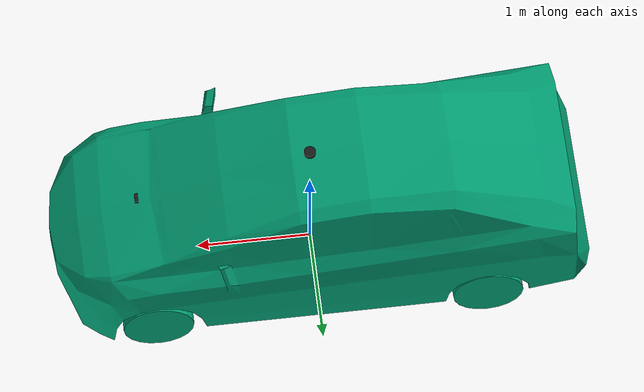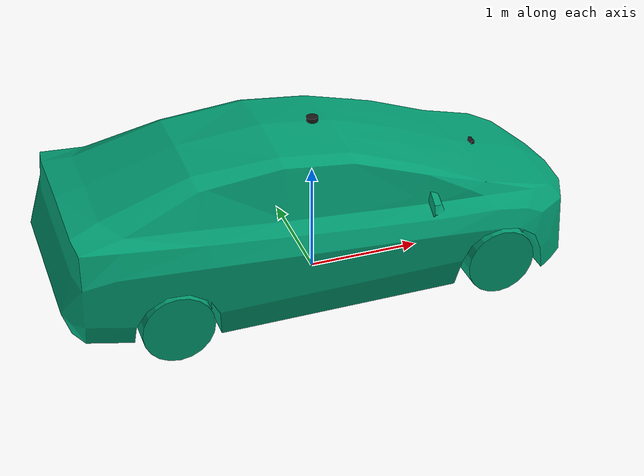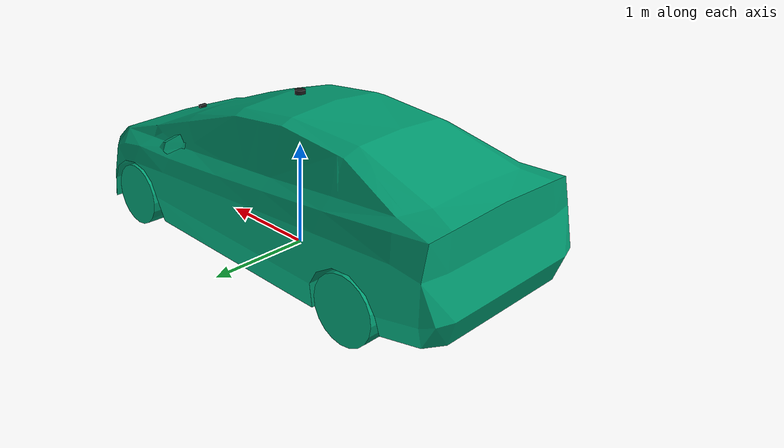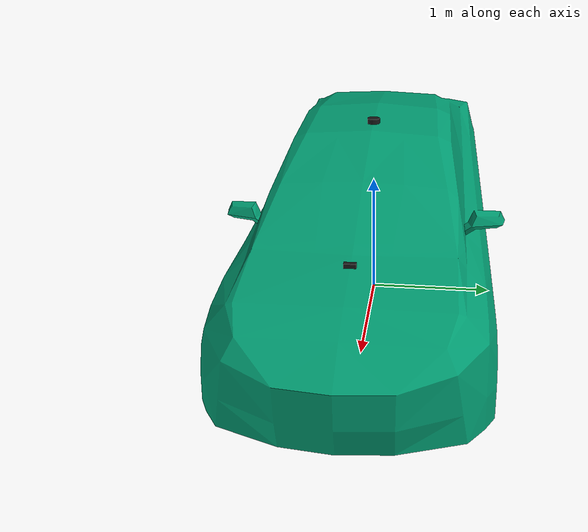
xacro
<?xml version="1.0"?>
<robot name="prius" xmlns:xacro="http://www.ros.org/wiki/xacro">

  <xacro:include filename="$(find gcamp_gazebo)/description/prius_core.xacro"/>
  <xacro:include filename="$(find gcamp_gazebo)/description/prius_gazebo.xacro"/>
  <xacro:include filename="$(find gcamp_gazebo)/description/prius_sensors.xacro"/>

  <!-- VLP-16 mounted on roof (z=1.5 from base_link ≈ roof of Prius) -->
  <joint name="velodyne_joint" type="fixed">
    <origin rpy="0 0 0" xyz="0 0 1.5"/>
    <parent link="base_link"/>
    <child  link="velodyne"/>
  </joint>

  <link name="velodyne">
    <inertial>
      <mass value="0.01"/>
      <origin xyz="0 0 0"/>
      <inertia ixx="1e-7" ixy="0" ixz="0" iyy="1e-7" iyz="0" izz="1e-7"/>
    </inertial>
    <visual>
      <geometry><cylinder radius="0.05" length="0.04"/></geometry>
      <material name="black"><color rgba="0.1 0.1 0.1 1"/></material>
    </visual>
  </link>

  <gazebo reference="velodyne">
    <sensor name="velodyne-VLP16" type="ray">
      <pose>0 0 0 0 0 0</pose>
      <visualize>false</visualize>
      <update_rate>10</update_rate>
      <ray>
        <scan>
          <horizontal>
            <samples>1875</samples>
            <resolution>1</resolution>
            <min_angle>-3.1415926535897931</min_angle>
            <max_angle>3.1415926535897931</max_angle>
          </horizontal>
          <vertical>
            <samples>16</samples>
            <resolution>1</resolution>
            <min_angle>-0.2617993877991494</min_angle>
            <max_angle>0.2617993877991494</max_angle>
          </vertical>
        </scan>
        <range>
          <min>0.055</min>
          <max>140.0</max>
          <resolution>0.001</resolution>
        </range>
        <noise>
          <type>gaussian</type>
          <mean>0.0</mean>
          <stddev>0.0</stddev>
        </noise>
      </ray>
      <plugin filename="libgazebo_ros_ray_sensor.so" name="gazebo_ros_laser_controller">
        <ros>
          <remapping>~/out:=points_raw</remapping>
        </ros>
        <output_type>sensor_msgs/PointCloud2</output_type>
        <frame_name>velodyne</frame_name>
      </plugin>
    </sensor>
  </gazebo>

</robot>

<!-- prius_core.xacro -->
<robot xmlns:xacro="http://www.ros.org/wiki/xacro">

  <xacro:property name="wheel_radius" value="0.31265"/>
  <xacro:property name="wheel_width"  value="0.20"/>
  <xacro:property name="front_axle_x" value="1.41"/>
  <xacro:property name="rear_axle_x"  value="-1.45"/>
  <xacro:property name="front_track_y" value="0.76"/>
  <xacro:property name="rear_track_y"  value="0.786"/>
  <xacro:property name="axle_z"       value="${wheel_radius}"/>
  <xacro:property name="max_steer"    value="0.5"/>

  <link name="base_link"/>

  <joint name="base_footprint_joint" type="fixed">
    <parent link="base_link"/>
    <child  link="base_footprint"/>
    <origin xyz="0 0 0" rpy="0 0 0"/>
  </joint>

  <link name="base_footprint"/>

  <joint name="chassis_joint" type="fixed">
    <parent link="base_link"/>
    <child  link="chassis"/>
    <origin xyz="0 0 0" rpy="0 0 0"/>
  </joint>

  <link name="chassis">
    <!-- Original Prius SDF mesh has no visual pose; rotate only to map SDF Y-forward to ROS X-forward. -->
    <visual>
      <origin xyz="0 0 0" rpy="0 0 1.5708"/>
      <geometry>
        <mesh filename="file://$(find gcamp_gazebo)/meshes/Hybrid.obj" scale="0.01 0.01 0.01"/>
      </geometry>
    </visual>
    <collision>
      <origin xyz="0 0 0.65" rpy="0 0 0"/>
      <geometry><box size="4.5 1.8 1.3"/></geometry>
    </collision>
    <inertial>
      <mass value="1326.0"/>
      <origin xyz="0 0 0.5" rpy="0 0 0"/>
      <inertia ixx="2581.13" ixy="0" ixz="0" iyy="591.31" iyz="0" izz="2681.95"/>
    </inertial>
  </link>

  <!-- ── Front left: steering parent + spinning wheel ── -->
  <joint name="front_left_steering_joint" type="revolute">
    <parent link="base_link"/>
    <child  link="front_left_steer_link"/>
    <origin xyz="${front_axle_x} ${front_track_y} ${axle_z}" rpy="0 0 0"/>
    <axis xyz="0 0 1"/>
    <limit lower="-${max_steer}" upper="${max_steer}" effort="100" velocity="1.0"/>
  </joint>

  <link name="front_left_steer_link">
    <visual>
      <geometry><sphere radius="0.001"/></geometry>
    </visual>
    <inertial>
      <mass value="0.1"/>
      <inertia ixx="1e-5" ixy="0" ixz="0" iyy="1e-5" iyz="0" izz="1e-5"/>
    </inertial>
  </link>

  <joint name="front_left_wheel_joint" type="continuous">
    <parent link="front_left_steer_link"/>
    <child  link="front_left_wheel"/>
    <origin xyz="0 0 0" rpy="0 0 0"/>
    <axis xyz="0 1 0"/>
  </joint>

  <link name="front_left_wheel">
    <visual>
      <geometry><sphere radius="0.001"/></geometry>
    </visual>
    <collision>
      <origin xyz="0 0 0" rpy="${pi/2} 0 0"/>
      <geometry><cylinder radius="${wheel_radius}" length="${wheel_width}"/></geometry>
    </collision>
    <inertial>
      <mass value="11.0"/>
      <inertia ixx="0.311" ixy="0" ixz="0" iyy="0.538" iyz="0" izz="0.311"/>
    </inertial>
  </link>

  <!-- ── Front right: steering parent + spinning wheel ── -->
  <joint name="front_right_steering_joint" type="revolute">
    <parent link="base_link"/>
    <child  link="front_right_steer_link"/>
    <origin xyz="${front_axle_x} -${front_track_y} ${axle_z}" rpy="0 0 0"/>
    <axis xyz="0 0 1"/>
    <limit lower="-${max_steer}" upper="${max_steer}" effort="100" velocity="1.0"/>
  </joint>

  <link name="front_right_steer_link">
    <visual>
      <geometry><sphere radius="0.001"/></geometry>
    </visual>
    <inertial>
      <mass value="0.1"/>
      <inertia ixx="1e-5" ixy="0" ixz="0" iyy="1e-5" iyz="0" izz="1e-5"/>
    </inertial>
  </link>

  <joint name="front_right_wheel_joint" type="continuous">
    <parent link="front_right_steer_link"/>
    <child  link="front_right_wheel"/>
    <origin xyz="0 0 0" rpy="0 0 0"/>
    <axis xyz="0 1 0"/>
  </joint>

  <link name="front_right_wheel">
    <visual>
      <geometry><sphere radius="0.001"/></geometry>
    </visual>
    <collision>
      <origin xyz="0 0 0" rpy="${pi/2} 0 0"/>
      <geometry><cylinder radius="${wheel_radius}" length="${wheel_width}"/></geometry>
    </collision>
    <inertial>
      <mass value="11.0"/>
      <inertia ixx="0.311" ixy="0" ixz="0" iyy="0.538" iyz="0" izz="0.311"/>
    </inertial>
  </link>

  <!-- ── Rear left wheel (driven) ── -->
  <joint name="rear_left_wheel_joint" type="continuous">
    <parent link="base_link"/>
    <child  link="rear_left_wheel"/>
    <origin xyz="${rear_axle_x} ${rear_track_y} ${axle_z}" rpy="0 0 0"/>
    <axis xyz="0 1 0"/>
  </joint>

  <link name="rear_left_wheel">
    <visual>
      <geometry><sphere radius="0.001"/></geometry>
    </visual>
    <collision>
      <origin xyz="0 0 0" rpy="${pi/2} 0 0"/>
      <geometry><cylinder radius="${wheel_radius}" length="${wheel_width}"/></geometry>
    </collision>
    <inertial>
      <mass value="11.0"/>
      <inertia ixx="0.311" ixy="0" ixz="0" iyy="0.538" iyz="0" izz="0.311"/>
    </inertial>
  </link>

  <!-- ── Rear right wheel (driven) ── -->
  <joint name="rear_right_wheel_joint" type="continuous">
    <parent link="base_link"/>
    <child  link="rear_right_wheel"/>
    <origin xyz="${rear_axle_x} -${rear_track_y} ${axle_z}" rpy="0 0 0"/>
    <axis xyz="0 1 0"/>
  </joint>

  <link name="rear_right_wheel">
    <visual>
      <geometry><sphere radius="0.001"/></geometry>
    </visual>
    <collision>
      <origin xyz="0 0 0" rpy="${pi/2} 0 0"/>
      <geometry><cylinder radius="${wheel_radius}" length="${wheel_width}"/></geometry>
    </collision>
    <inertial>
      <mass value="11.0"/>
      <inertia ixx="0.311" ixy="0" ixz="0" iyy="0.538" iyz="0" izz="0.311"/>
    </inertial>
  </link>

</robot>

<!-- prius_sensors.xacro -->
<robot xmlns:xacro="http://www.ros.org/wiki/xacro">

  <joint name="front_camera_joint" type="fixed">
    <parent link="chassis"/>
    <child link="front_camera_link"/>
    <origin xyz="1.5 0 1.0" rpy="0 0 0"/>
  </joint>

  <link name="front_camera_link">
    <visual>
      <geometry><box size="0.03 0.08 0.03"/></geometry>
      <material name="front_camera_black"><color rgba="0.1 0.1 0.1 1.0"/></material>
    </visual>
    <inertial>
      <mass value="0.1"/>
      <origin xyz="0 0 0"/>
      <inertia ixx="1e-5" ixy="0" ixz="0" iyy="1e-5" iyz="0" izz="1e-5"/>
    </inertial>
  </link>

  <!-- Optical frame: Z forward, X right, Y down (ROS camera convention) -->
  <joint name="front_camera_optical_joint" type="fixed">
    <parent link="front_camera_link"/>
    <child link="front_camera_link_optical"/>
    <origin xyz="0 0 0" rpy="${-pi/2} 0 ${-pi/2}"/>
  </joint>

  <link name="front_camera_link_optical">
    <visual>
      <geometry><sphere radius="0.001"/></geometry>
    </visual>
  </link>

  <gazebo reference="front_camera_link">
    <sensor name="front_camera" type="camera">
      <always_on>true</always_on>
      <update_rate>30</update_rate>
      <camera>
        <horizontal_fov>1.3962634</horizontal_fov>
        <image>
          <width>640</width>
          <height>480</height>
          <format>R8G8B8</format>
        </image>
        <clip>
          <near>0.1</near>
          <far>100</far>
        </clip>
        <noise>
          <type>gaussian</type>
          <mean>0.0</mean>
          <stddev>0.007</stddev>
        </noise>
      </camera>
      <plugin name="front_camera_controller" filename="libgazebo_ros_camera.so">
        <ros>
          <remapping>image_raw:=front_camera/image_raw</remapping>
          <remapping>camera_info:=front_camera/camera_info</remapping>
        </ros>
        <camera_name>front_camera</camera_name>
        <frame_name>front_camera_link_optical</frame_name>
      </plugin>
    </sensor>
  </gazebo>

  <joint name="depth_camera_joint" type="fixed">
    <parent link="chassis"/>
    <child link="depth_camera_link"/>
    <origin xyz="1.5 0.1 0.95" rpy="0 0 0"/>
  </joint>

  <link name="depth_camera_link">
    <visual>
      <geometry><box size="0.025 0.025 0.025"/></geometry>
      <material name="depth_camera_black"><color rgba="0.1 0.1 0.1 1.0"/></material>
    </visual>
    <inertial>
      <mass value="0.1"/>
      <origin xyz="0 0 0"/>
      <inertia ixx="1e-5" ixy="0" ixz="0" iyy="1e-5" iyz="0" izz="1e-5"/>
    </inertial>
  </link>

  <joint name="depth_camera_optical_joint" type="fixed">
    <parent link="depth_camera_link"/>
    <child link="depth_camera_link_optical"/>
    <origin xyz="0 0 0" rpy="${-pi/2} 0 ${-pi/2}"/>
  </joint>

  <link name="depth_camera_link_optical">
    <visual>
      <geometry><sphere radius="0.001"/></geometry>
    </visual>
  </link>

  <gazebo reference="depth_camera_link">
    <sensor name="depth_camera" type="depth">
      <always_on>true</always_on>
      <update_rate>15</update_rate>
      <camera>
        <horizontal_fov>1.3962634</horizontal_fov>
        <image>
          <width>640</width>
          <height>480</height>
          <format>R8G8B8</format>
        </image>
        <clip>
          <near>0.1</near>
          <far>10.0</far>
        </clip>
        <noise>
          <type>gaussian</type>
          <mean>0.0</mean>
          <stddev>0.01</stddev>
        </noise>
      </camera>
      <plugin name="depth_camera_controller" filename="libgazebo_ros_camera.so">
        <ros>
          <remapping>image_raw:=depth_camera/image_raw</remapping>
          <remapping>depth/image_raw:=depth_camera/depth/image_raw</remapping>
          <remapping>camera_info:=depth_camera/camera_info</remapping>
        </ros>
        <camera_name>depth_camera</camera_name>
        <frame_name>depth_camera_link_optical</frame_name>
      </plugin>
    </sensor>
  </gazebo>

  <joint name="imu_joint" type="fixed">
    <parent link="chassis"/>
    <child link="imu_link"/>
    <origin xyz="0 0 0.5" rpy="0 0 0"/>
  </joint>

  <link name="imu_link">
    <visual>
      <geometry><box size="0.02 0.02 0.02"/></geometry>
      <material name="imu_black"><color rgba="0.1 0.1 0.1 1.0"/></material>
    </visual>
    <inertial>
      <mass value="0.01"/>
      <origin xyz="0 0 0"/>
      <inertia ixx="1e-7" ixy="0" ixz="0" iyy="1e-7" iyz="0" izz="1e-7"/>
    </inertial>
  </link>

  <gazebo reference="imu_link">
    <sensor name="imu_sensor" type="imu">
      <always_on>true</always_on>
      <update_rate>100</update_rate>
      <plugin name="imu_plugin" filename="libgazebo_ros_imu_sensor.so">
        <ros>
          <remapping>~/out:=imu/data</remapping>
        </ros>
        <initial_orientation_as_reference>false</initial_orientation_as_reference>
      </plugin>
      <imu>
        <angular_velocity>
          <x><noise type="gaussian"><mean>0.0</mean><stddev>0.009</stddev><bias_mean>0.0</bias_mean><bias_stddev>0.001</bias_stddev></noise></x>
          <y><noise type="gaussian"><mean>0.0</mean><stddev>0.009</stddev><bias_mean>0.0</bias_mean><bias_stddev>0.001</bias_stddev></noise></y>
          <z><noise type="gaussian"><mean>0.0</mean><stddev>0.009</stddev><bias_mean>0.0</bias_mean><bias_stddev>0.001</bias_stddev></noise></z>
        </angular_velocity>
        <linear_acceleration>
          <x><noise type="gaussian"><mean>0.0</mean><stddev>0.021</stddev><bias_mean>0.0</bias_mean><bias_stddev>0.001</bias_stddev></noise></x>
          <y><noise type="gaussian"><mean>0.0</mean><stddev>0.021</stddev><bias_mean>0.0</bias_mean><bias_stddev>0.001</bias_stddev></noise></y>
          <z><noise type="gaussian"><mean>0.0</mean><stddev>0.021</stddev><bias_mean>0.0</bias_mean><bias_stddev>0.001</bias_stddev></noise></z>
        </linear_acceleration>
      </imu>
    </sensor>
  </gazebo>

</robot>
